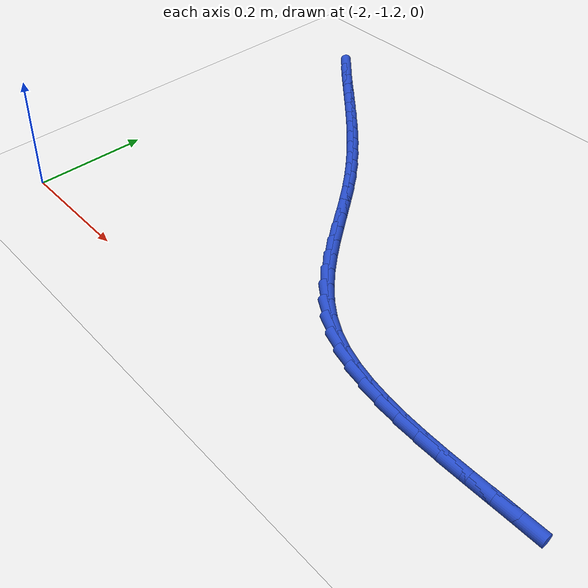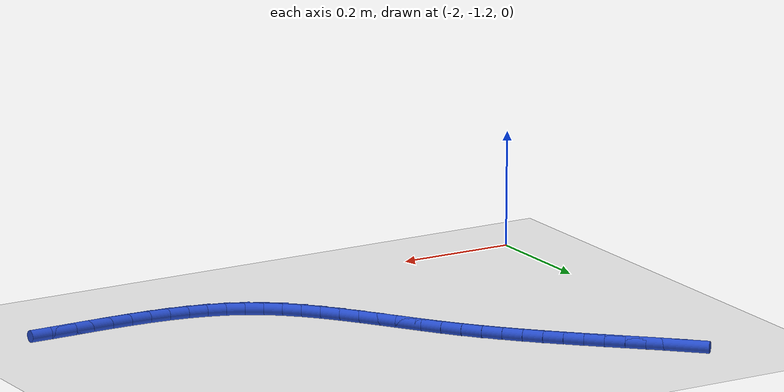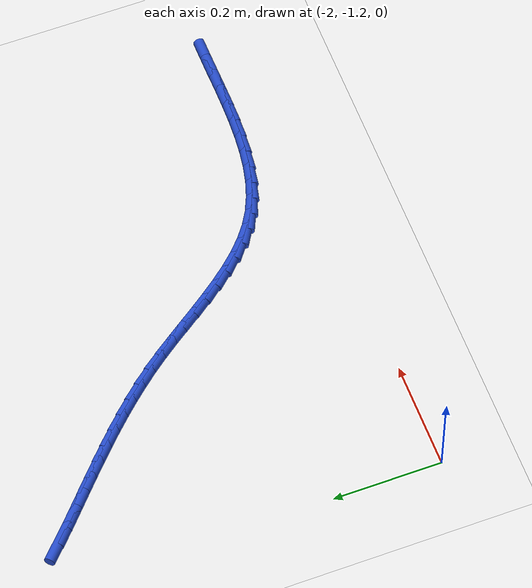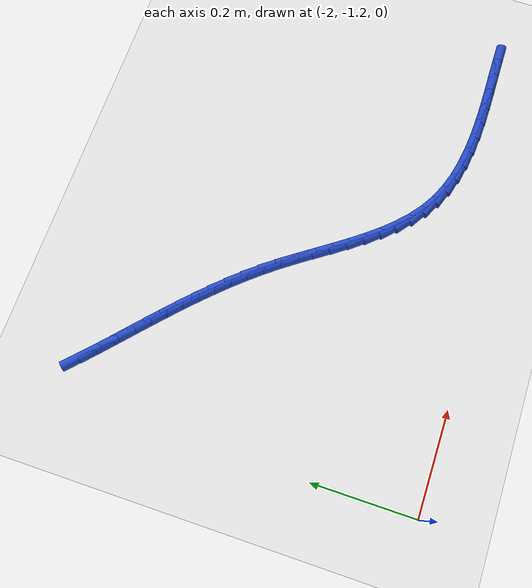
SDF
<sdf version="1.6">
 <world name="default">
  <model name="ground_plane">
   <static>1</static>
   <link name="link">
    <collision name="collision">
     <geometry><plane><normal>0 0 1</normal><size>100 100</size></plane></geometry>
     <surface><friction><ode><mu>100</mu><mu2>50</mu2></ode></friction></surface>
    </collision>
    <visual name="visual">
     <cast_shadows>0</cast_shadows>
     <geometry><plane><normal>0 0 1</normal><size>100 100</size></plane></geometry>
     <material>
      <script><uri>file://media/materials/scripts/gazebo.material</uri><name>Gazebo/WhiteGlow</name></script>
     </material>
    </visual>
   </link>
  </model>
  <model name="line">
   <link name="link_117">
    <pose>-1.917996417267101 -0.5333125180242314 0.01 0 1.57 -0.766768201511137</pose>
    <collision name="collision">
     <geometry><cylinder><radius>0.01</radius><length>0.08</length></cylinder></geometry>
    </collision>
    <visual name="visual">
     <material>
      <script><name>Gazebo/Blue</name><uri>file://media/materials/scripts/gazebo.material</uri></script>
     </material>
     <geometry><cylinder><radius>0.01</radius><length>0.08</length></cylinder></geometry>
    </visual>
   </link>
   <link name="link_118">
    <pose>-1.8934624858345648 -0.5569489338850239 0.01 0 1.57 -0.7474136953929731</pose>
    <collision name="collision">
     <geometry><cylinder><radius>0.01</radius><length>0.08</length></cylinder></geometry>
    </collision>
    <visual name="visual">
     <material>
      <script><name>Gazebo/Blue</name><uri>file://media/materials/scripts/gazebo.material</uri></script>
     </material>
     <geometry><cylinder><radius>0.01</radius><length>0.08</length></cylinder></geometry>
    </visual>
   </link>
   <link name="link_119">
    <pose>-1.8684429388316812 -0.5801364789731421 0.01 0 1.57 -0.740666915526459</pose>
    <collision name="collision">
     <geometry><cylinder><radius>0.01</radius><length>0.08</length></cylinder></geometry>
    </collision>
    <visual name="visual">
     <material>
      <script><name>Gazebo/Blue</name><uri>file://media/materials/scripts/gazebo.material</uri></script>
     </material>
     <geometry><cylinder><radius>0.01</radius><length>0.08</length></cylinder></geometry>
    </visual>
   </link>
   <link name="link_120">
    <pose>-1.8434033179525808 -0.6030305354492963 0.01 0 1.57 -0.7428197144372886</pose>
    <collision name="collision">
     <geometry><cylinder><radius>0.01</radius><length>0.08</length></cylinder></geometry>
    </collision>
    <visual name="visual">
     <material>
      <script><name>Gazebo/Blue</name><uri>file://media/materials/scripts/gazebo.material</uri></script>
     </material>
     <geometry><cylinder><radius>0.01</radius><length>0.08</length></cylinder></geometry>
    </visual>
   </link>
   <link name="link_121">
    <pose>-1.8186249151188476 -0.625783886042347 0.01 0 1.57 -0.7494962252402626</pose>
    <collision name="collision">
     <geometry><cylinder><radius>0.01</radius><length>0.08</length></cylinder></geometry>
    </collision>
    <visual name="visual">
     <material>
      <script><name>Gazebo/Blue</name><uri>file://media/materials/scripts/gazebo.material</uri></script>
     </material>
     <geometry><cylinder><radius>0.01</radius><length>0.08</length></cylinder></geometry>
    </visual>
   </link>
   <link name="link_122">
    <pose>-1.7941665853535498 -0.6485461752978585 0.01 0 1.57 -0.7604743352403701</pose>
    <collision name="collision">
     <geometry><cylinder><radius>0.01</radius><length>0.08</length></cylinder></geometry>
    </collision>
    <visual name="visual">
     <material>
      <script><name>Gazebo/Blue</name><uri>file://media/materials/scripts/gazebo.material</uri></script>
     </material>
     <geometry><cylinder><radius>0.01</radius><length>0.08</length></cylinder></geometry>
    </visual>
   </link>
   <link name="link_123">
    <pose>-1.7700739044903981 -0.6714668604159937 0.01 0 1.57 -0.7757434217971474</pose>
    <collision name="collision">
     <geometry><cylinder><radius>0.01</radius><length>0.08</length></cylinder></geometry>
    </collision>
    <visual name="visual">
     <material>
      <script><name>Gazebo/Blue</name><uri>file://media/materials/scripts/gazebo.material</uri></script>
     </material>
     <geometry><cylinder><radius>0.01</radius><length>0.08</length></cylinder></geometry>
    </visual>
   </link>
   <link name="link_124">
    <pose>-1.7463924483631024 -0.6946953985969148 0.01 0 1.57 -0.7952291817999287</pose>
    <collision name="collision">
     <geometry><cylinder><radius>0.01</radius><length>0.08</length></cylinder></geometry>
    </collision>
    <visual name="visual">
     <material>
      <script><name>Gazebo/Blue</name><uri>file://media/materials/scripts/gazebo.material</uri></script>
     </material>
     <geometry><cylinder><radius>0.01</radius><length>0.08</length></cylinder></geometry>
    </visual>
   </link>
   <link name="link_125">
    <pose>-1.7231677928053701 -0.718381247040784 0.01 0 1.57 -0.8187865858727852</pose>
    <collision name="collision">
     <geometry><cylinder><radius>0.01</radius><length>0.08</length></cylinder></geometry>
    </collision>
    <visual name="visual">
     <material>
      <script><name>Gazebo/Blue</name><uri>file://media/materials/scripts/gazebo.material</uri></script>
     </material>
     <geometry><cylinder><radius>0.01</radius><length>0.08</length></cylinder></geometry>
    </visual>
   </link>
   <link name="link_126">
    <pose>-1.7004455136509118 -0.7426738629477637 0.01 0 1.57 -0.8461939847146079</pose>
    <collision name="collision">
     <geometry><cylinder><radius>0.01</radius><length>0.08</length></cylinder></geometry>
    </collision>
    <visual name="visual">
     <material>
      <script><name>Gazebo/Blue</name><uri>file://media/materials/scripts/gazebo.material</uri></script>
     </material>
     <geometry><cylinder><radius>0.01</radius><length>0.08</length></cylinder></geometry>
    </visual>
   </link>
   <link name="link_127">
    <pose>-1.6782711867334368 -0.7677227035180167 0.01 0 1.57 -0.8771497994165618</pose>
    <collision name="collision">
     <geometry><cylinder><radius>0.01</radius><length>0.08</length></cylinder></geometry>
    </collision>
    <visual name="visual">
     <material>
      <script><name>Gazebo/Blue</name><uri>file://media/materials/scripts/gazebo.material</uri></script>
     </material>
     <geometry><cylinder><radius>0.01</radius><length>0.08</length></cylinder></geometry>
    </visual>
   </link>
   <link name="link_128">
    <pose>-1.656690387886654 -0.793677225951705 0.01 0 1.57 -0.9112242057142089</pose>
    <collision name="collision">
     <geometry><cylinder><radius>0.01</radius><length>0.08</length></cylinder></geometry>
    </collision>
    <visual name="visual">
     <material>
      <script><name>Gazebo/Blue</name><uri>file://media/materials/scripts/gazebo.material</uri></script>
     </material>
     <geometry><cylinder><radius>0.01</radius><length>0.08</length></cylinder></geometry>
    </visual>
   </link>
   <link name="link_129">
    <pose>-1.6357478669397354 -0.8206852132992687 0.01 0 1.57 -0.9423701717974627</pose>
    <collision name="collision">
     <geometry><cylinder><radius>0.01</radius><length>0.08</length></cylinder></geometry>
    </collision>
    <visual name="visual">
     <material>
      <script><name>Gazebo/Blue</name><uri>file://media/materials/scripts/gazebo.material</uri></script>
     </material>
     <geometry><cylinder><radius>0.01</radius><length>0.08</length></cylinder></geometry>
    </visual>
   </link>
   <link name="link_130">
    <pose>-1.6153911778962131 -0.8486974516733656 0.01 0 1.57 -0.9600876952361652</pose>
    <collision name="collision">
     <geometry><cylinder><radius>0.01</radius><length>0.08</length></cylinder></geometry>
    </collision>
    <visual name="visual">
     <material>
      <script><name>Gazebo/Blue</name><uri>file://media/materials/scripts/gazebo.material</uri></script>
     </material>
     <geometry><cylinder><radius>0.01</radius><length>0.08</length></cylinder></geometry>
    </visual>
   </link>
   <link name="link_131">
    <pose>-1.5953805676939106 -0.8772850923810697 0.01 0 1.57 -0.9637779672986069</pose>
    <collision name="collision">
     <geometry><cylinder><radius>0.01</radius><length>0.08</length></cylinder></geometry>
    </collision>
    <visual name="visual">
     <material>
      <script><name>Gazebo/Blue</name><uri>file://media/materials/scripts/gazebo.material</uri></script>
     </material>
     <geometry><cylinder><radius>0.01</radius><length>0.08</length></cylinder></geometry>
    </visual>
   </link>
   <link name="link_132">
    <pose>-1.5754549654873202 -0.9059760797500539 0.01 0 1.57 -0.953558357763635</pose>
    <collision name="collision">
     <geometry><cylinder><radius>0.01</radius><length>0.08</length></cylinder></geometry>
    </collision>
    <visual name="visual">
     <material>
      <script><name>Gazebo/Blue</name><uri>file://media/materials/scripts/gazebo.material</uri></script>
     </material>
     <geometry><cylinder><radius>0.01</radius><length>0.08</length></cylinder></geometry>
    </visual>
   </link>
   <link name="link_133">
    <pose>-1.5553533004309366 -0.9342983581079923 0.01 0 1.57 -0.9289819476766806</pose>
    <collision name="collision">
     <geometry><cylinder><radius>0.01</radius><length>0.08</length></cylinder></geometry>
    </collision>
    <visual name="visual">
     <material>
      <script><name>Gazebo/Blue</name><uri>file://media/materials/scripts/gazebo.material</uri></script>
     </material>
     <geometry><cylinder><radius>0.01</radius><length>0.08</length></cylinder></geometry>
    </visual>
   </link>
   <link name="link_134">
    <pose>-1.5348145016792518 -0.9617798717825583 0.01 0 1.57 -0.8890568759566296</pose>
    <collision name="collision">
     <geometry><cylinder><radius>0.01</radius><length>0.08</length></cylinder></geometry>
    </collision>
    <visual name="visual">
     <material>
      <script><name>Gazebo/Blue</name><uri>file://media/materials/scripts/gazebo.material</uri></script>
     </material>
     <geometry><cylinder><radius>0.01</radius><length>0.08</length></cylinder></geometry>
    </visual>
   </link>
   <link name="link_135">
    <pose>-1.5135774983867605 -0.9879485651014254 0.01 0 1.57 -0.8323266308561046</pose>
    <collision name="collision">
     <geometry><cylinder><radius>0.01</radius><length>0.08</length></cylinder></geometry>
    </collision>
    <visual name="visual">
     <material>
      <script><name>Gazebo/Blue</name><uri>file://media/materials/scripts/gazebo.material</uri></script>
     </material>
     <geometry><cylinder><radius>0.01</radius><length>0.08</length></cylinder></geometry>
    </visual>
   </link>
   <link name="link_136">
    <pose>-1.4913812197079541 -1.012332382392267 0.01 0 1.57 -0.757086891383281</pose>
    <collision name="collision">
     <geometry><cylinder><radius>0.01</radius><length>0.08</length></cylinder></geometry>
    </collision>
    <visual name="visual">
     <material>
      <script><name>Gazebo/Blue</name><uri>file://media/materials/scripts/gazebo.material</uri></script>
     </material>
     <geometry><cylinder><radius>0.01</radius><length>0.08</length></cylinder></geometry>
    </visual>
   </link>
   <link name="link_137">
    <pose>-1.4679645947973272 -1.0344592679827567 0.01 0 1.57 -0.6618623310233918</pose>
    <collision name="collision">
     <geometry><cylinder><radius>0.01</radius><length>0.08</length></cylinder></geometry>
    </collision>
    <visual name="visual">
     <material>
      <script><name>Gazebo/Blue</name><uri>file://media/materials/scripts/gazebo.material</uri></script>
     </material>
     <geometry><cylinder><radius>0.01</radius><length>0.08</length></cylinder></geometry>
    </visual>
   </link>
   <link name="link_138">
    <pose>-1.443066552809373 -1.0538571662005685 0.01 0 1.57 -0.5467680070899327</pose>
    <collision name="collision">
     <geometry><cylinder><radius>0.01</radius><length>0.08</length></cylinder></geometry>
    </collision>
    <visual name="visual">
     <material>
      <script><name>Gazebo/Blue</name><uri>file://media/materials/scripts/gazebo.material</uri></script>
     </material>
     <geometry><cylinder><radius>0.01</radius><length>0.08</length></cylinder></geometry>
    </visual>
   </link>
   <link name="link_139">
    <pose>-1.4164336039244778 -1.070067765952064 0.01 0 1.57 -0.4274583979008477</pose>
    <collision name="collision">
     <geometry><cylinder><radius>0.01</radius><length>0.08</length></cylinder></geometry>
    </collision>
    <visual name="visual">
     <material>
      <script><name>Gazebo/Blue</name><uri>file://media/materials/scripts/gazebo.material</uri></script>
     </material>
     <geometry><cylinder><radius>0.01</radius><length>0.08</length></cylinder></geometry>
    </visual>
   </link>
   <link name="link_140">
    <pose>-1.3880209439516802 -1.0830111081087015 0.01 0 1.57 -0.32205602162787905</pose>
    <collision name="collision">
     <geometry><cylinder><radius>0.01</radius><length>0.08</length></cylinder></geometry>
    </collision>
    <visual name="visual">
     <material>
      <script><name>Gazebo/Blue</name><uri>file://media/materials/scripts/gazebo.material</uri></script>
     </material>
     <geometry><cylinder><radius>0.01</radius><length>0.08</length></cylinder></geometry>
    </visual>
   </link>
   <link name="link_141">
    <pose>-1.3580135155707163 -1.0930237700354424 0.01 0 1.57 -0.2326121197201929</pose>
    <collision name="collision">
     <geometry><cylinder><radius>0.01</radius><length>0.08</length></cylinder></geometry>
    </collision>
    <visual name="visual">
     <material>
      <script><name>Gazebo/Blue</name><uri>file://media/materials/scripts/gazebo.material</uri></script>
     </material>
     <geometry><cylinder><radius>0.01</radius><length>0.08</length></cylinder></geometry>
    </visual>
   </link>
   <link name="link_142">
    <pose>-1.32660806694655 -1.1004637327203166 0.01 0 1.57 -0.15889953384746375</pose>
    <collision name="collision">
     <geometry><cylinder><radius>0.01</radius><length>0.08</length></cylinder></geometry>
    </collision>
    <visual name="visual">
     <material>
      <script><name>Gazebo/Blue</name><uri>file://media/materials/scripts/gazebo.material</uri></script>
     </material>
     <geometry><cylinder><radius>0.01</radius><length>0.08</length></cylinder></geometry>
    </visual>
   </link>
   <link name="link_143">
    <pose>-1.2940013462441473 -1.1056889771513532 0.01 0 1.57 -0.09988612282261042</pose>
    <collision name="collision">
     <geometry><cylinder><radius>0.01</radius><length>0.08</length></cylinder></geometry>
    </collision>
    <visual name="visual">
     <material>
      <script><name>Gazebo/Blue</name><uri>file://media/materials/scripts/gazebo.material</uri></script>
     </material>
     <geometry><cylinder><radius>0.01</radius><length>0.08</length></cylinder></geometry>
    </visual>
   </link>
   <link name="link_144">
    <pose>-1.260390101628472 -1.109057484316581 0.01 0 1.57 -0.054269845577993275</pose>
    <collision name="collision">
     <geometry><cylinder><radius>0.01</radius><length>0.08</length></cylinder></geometry>
    </collision>
    <visual name="visual">
     <material>
      <script><name>Gazebo/Blue</name><uri>file://media/materials/scripts/gazebo.material</uri></script>
     </material>
     <geometry><cylinder><radius>0.01</radius><length>0.08</length></cylinder></geometry>
    </visual>
   </link>
   <link name="link_145">
    <pose>-1.225971081264489 -1.1109272352040285 0.01 0 1.57 -0.02080700537237138</pose>
    <collision name="collision">
     <geometry><cylinder><radius>0.01</radius><length>0.08</length></cylinder></geometry>
    </collision>
    <visual name="visual">
     <material>
      <script><name>Gazebo/Blue</name><uri>file://media/materials/scripts/gazebo.material</uri></script>
     </material>
     <geometry><cylinder><radius>0.01</radius><length>0.08</length></cylinder></geometry>
    </visual>
   </link>
   <link name="link_146">
    <pose>-1.1909410333171637 -1.1116562108017256 0.01 0 1.57 0.001518399886939561</pose>
    <collision name="collision">
     <geometry><cylinder><radius>0.01</radius><length>0.08</length></cylinder></geometry>
    </collision>
    <visual name="visual">
     <material>
      <script><name>Gazebo/Blue</name><uri>file://media/materials/scripts/gazebo.material</uri></script>
     </material>
     <geometry><cylinder><radius>0.01</radius><length>0.08</length></cylinder></geometry>
    </visual>
   </link>
   <link name="link_147">
    <pose>-1.15549670595146 -1.1116023920977005 0.01 0 1.57 0.013420592758354978</pose>
    <collision name="collision">
     <geometry><cylinder><radius>0.01</radius><length>0.08</length></cylinder></geometry>
    </collision>
    <visual name="visual">
     <material>
      <script><name>Gazebo/Blue</name><uri>file://media/materials/scripts/gazebo.material</uri></script>
     </material>
     <geometry><cylinder><radius>0.01</radius><length>0.08</length></cylinder></geometry>
    </visual>
   </link>
   <link name="link_148">
    <pose>-1.1198348473323434 -1.1111237600799828 0.01 0 1.57 0.015285355441072958</pose>
    <collision name="collision">
     <geometry><cylinder><radius>0.01</radius><length>0.08</length></cylinder></geometry>
    </collision>
    <visual name="visual">
     <material>
      <script><name>Gazebo/Blue</name><uri>file://media/materials/scripts/gazebo.material</uri></script>
     </material>
     <geometry><cylinder><radius>0.01</radius><length>0.08</length></cylinder></geometry>
    </visual>
   </link>
   <link name="link_149">
    <pose>-1.084152205624778 -1.1105782957366013 0.01 0 1.57 0.007166173005400457</pose>
    <collision name="collision">
     <geometry><cylinder><radius>0.01</radius><length>0.08</length></cylinder></geometry>
    </collision>
    <visual name="visual">
     <material>
      <script><name>Gazebo/Blue</name><uri>file://media/materials/scripts/gazebo.material</uri></script>
     </material>
     <geometry><cylinder><radius>0.01</radius><length>0.08</length></cylinder></geometry>
    </visual>
   </link>
  </model>
 </world>
</sdf>
